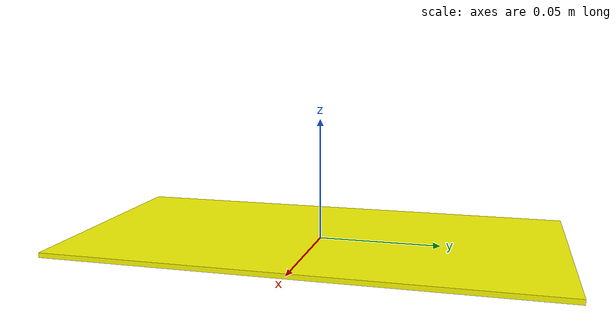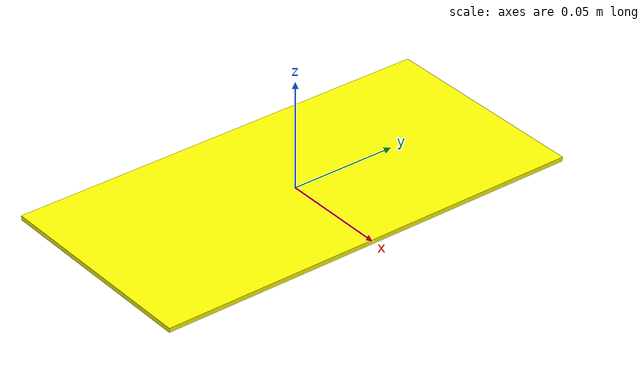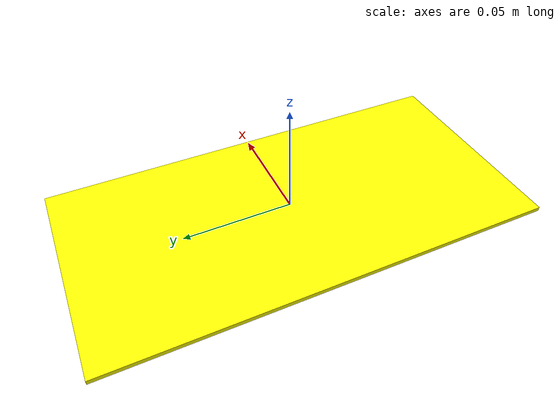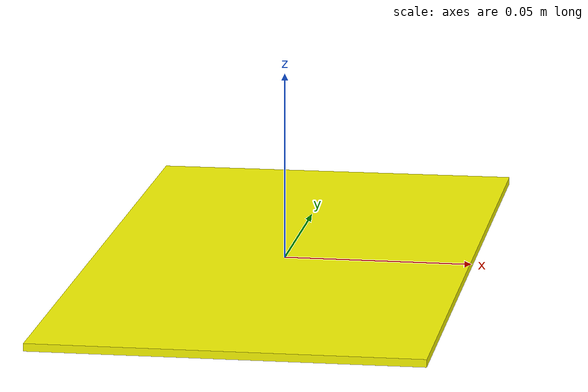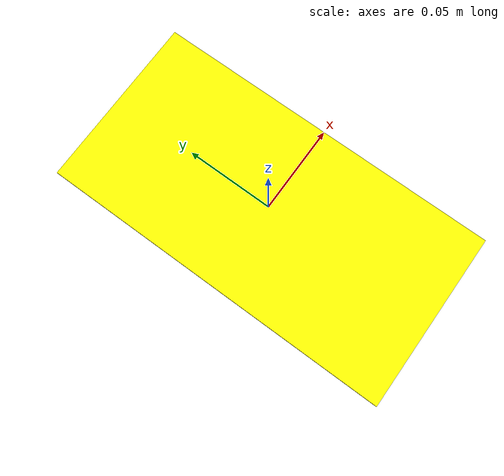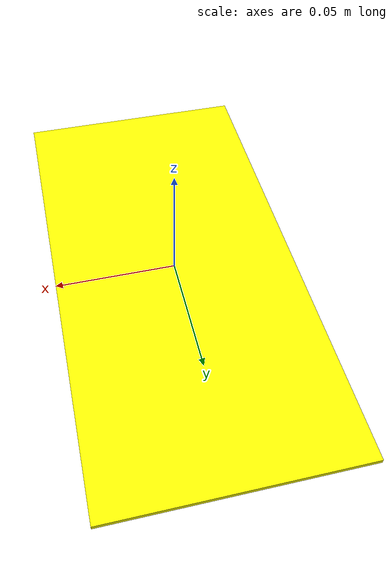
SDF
<?xml version='1.0'?>
<sdf version='1.7'>
  <model name='prompt_button'>

    <link name='prompt_button'>
      <inertial>
        <mass>1</mass>
        <inertia>
          <ixx>0.166667</ixx>
          <ixy>0</ixy>
          <ixz>0</ixz>
          <iyy>0.166667</iyy>
          <iyz>0</iyz>
          <izz>0.166667</izz>
        </inertia>
        <pose>0 0 0 0 -0 0</pose>
      </inertial>
      <self_collide>0</self_collide>
      <enable_wind>0</enable_wind>
      <kinematic>0</kinematic>
      <pose>0 0 0 0 -0 0</pose>
      <gravity>0</gravity>
      <visual name='visual'>
        <geometry>
          <box>
            <size>0.1 0.2 0.002</size>
          </box>
        </geometry>
        <material>
          <script>
            <name>Gazebo/Grey</name>
            <uri>file://media/materials/scripts/gazebo.material</uri>
          </script>
          <shader type='pixel'>
            <normal_map>__default__</normal_map>
          </shader>
          <ambient>1 1 0 0</ambient>
          <diffuse>1 1 1 1</diffuse>
          <specular>0.1 0.1 0.1 1</specular>
          <emissive>0 0 0 1</emissive>
        </material>
        <pose>0 0 0 0 -0 0</pose>
        <transparency>0.0</transparency>
        <cast_shadows>1</cast_shadows>
      </visual>
    </link>

    <static>0</static>
    <allow_auto_disable>1</allow_auto_disable>
  </model>
</sdf>
